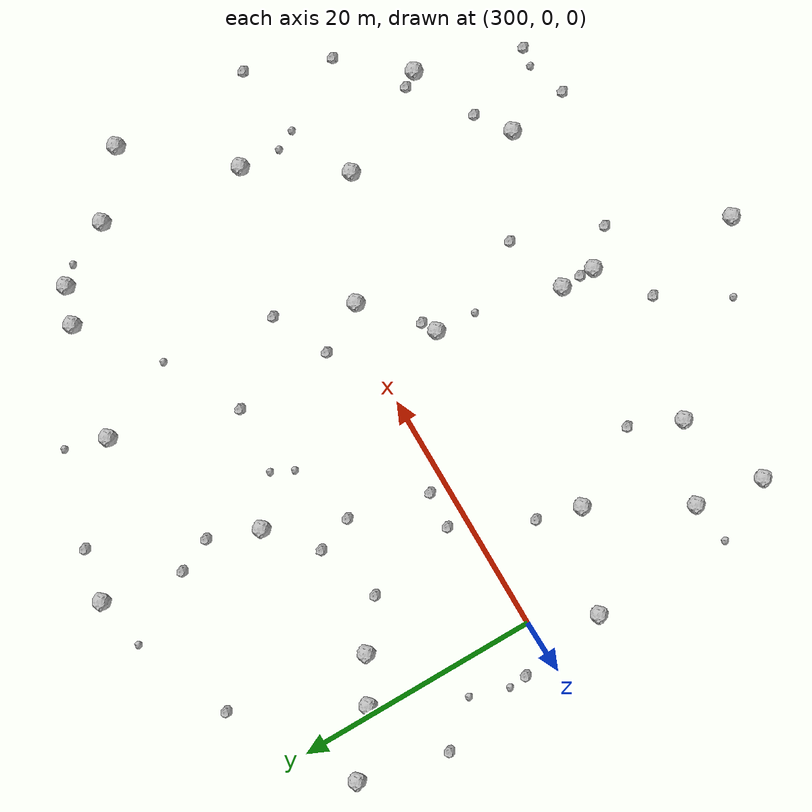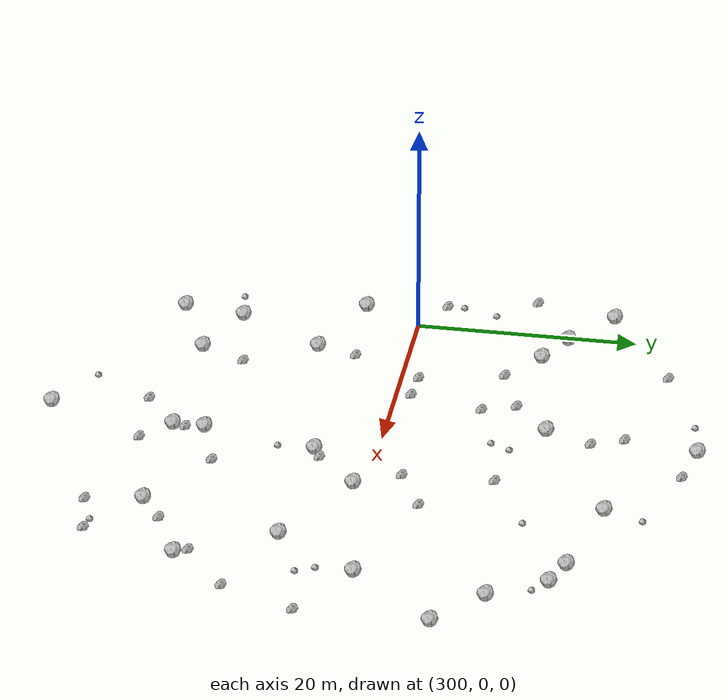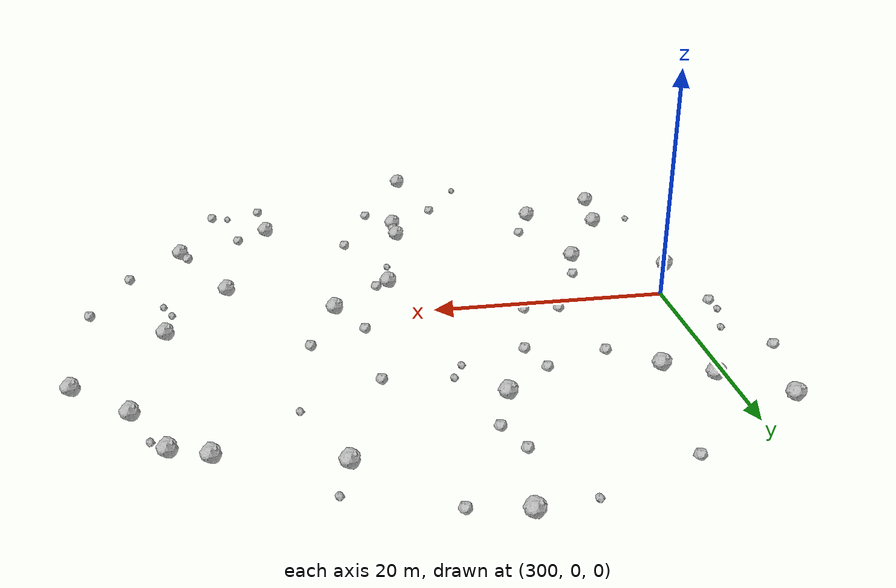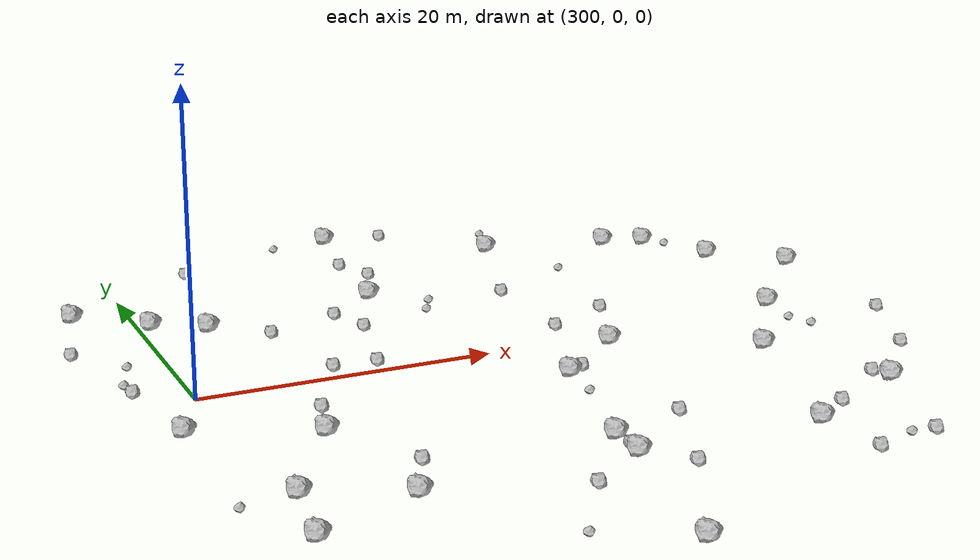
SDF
<sdf version="1.6">
 <world name="default">
  <include><uri>model://sun</uri></include>
  <model name="rock1_8_3">
   <include><uri>model://rock1</uri><pose>342.12879104975656 1.2146791135954977 0.5 0 0 0</pose></include>
  </model>
  <model name="rock1_8_4">
   <include><uri>model://rock1</uri><pose>316.9058359327163 14.085287060229646 0.5 0 0 0</pose></include>
  </model>
  <model name="rock1_8_5">
   <include><uri>model://rock1</uri><pose>328.32705155299175 -1.1720687497899398 0.5 0 0 0</pose></include>
  </model>
  <model name="rock1_8_6">
   <include><uri>model://rock1</uri><pose>329.09293566215234 20.792597177297644 0.5 0 0 0</pose></include>
  </model>
  <model name="rock1_8_7">
   <include><uri>model://rock1</uri><pose>348.4844571446397 8.746178127800782 0.5 0 0 0</pose></include>
  </model>
  <model name="rock1_8_8">
   <include><uri>model://rock1</uri><pose>300.90547672363977 13.9049670082792 0.5 0 0 0</pose></include>
  </model>
  <model name="rock1_8_9">
   <include><uri>model://rock1</uri><pose>307.469735448918 -18.52959388300348 0.5 0 0 0</pose></include>
  </model>
  <model name="rock1_8_10">
   <include><uri>model://rock1</uri><pose>338.11589566069904 18.749242108384358 0.5 0 0 0</pose></include>
  </model>
  <model name="rock1_8_11">
   <include><uri>model://rock1</uri><pose>337.34088477556367 -6.056217490737307 0.5 0 0 0</pose></include>
  </model>
  <model name="rock1_8_12">
   <include><uri>model://rock1</uri><pose>319.19846282001856 -29.865960599034484 0.5 0 0 0</pose></include>
  </model>
  <model name="rock1_8_13">
   <include><uri>model://rock1</uri><pose>323.25261956064315 -5.476495001993889 0.5 0 0 0</pose></include>
  </model>
  <model name="rock1_8_14">
   <include><uri>model://rock1</uri><pose>341.6866886390558 -14.312701438853537 0.5 0 0 0</pose></include>
  </model>
  <model name="rock1_8_15">
   <include><uri>model://rock1</uri><pose>297.85407049073683 -5.114401847932193 0.5 0 0 0</pose></include>
  </model>
  <model name="rock1_8_16">
   <include><uri>model://rock1</uri><pose>301.30121729932 -15.960122247273738 0.5 0 0 0</pose></include>
  </model>
  <model name="rock1_8_17">
   <include><uri>model://rock1</uri><pose>321.2060606936451 -18.496490987839103 0.5 0 0 0</pose></include>
  </model>
  <model name="rock1_8_18">
   <include><uri>model://rock1</uri><pose>333.70621892265416 -18.566478745027567 0.5 0 0 0</pose></include>
  </model>
  <model name="rock1_8_19">
   <include><uri>model://rock1</uri><pose>305.7107488608375 -8.267039520738379 0.5 0 0 0</pose></include>
  </model>
  <model name="rock1_8_20">
   <include><uri>model://rock1</uri><pose>321.19675009884645 -15.671245790555101 0.5 0 0 0</pose></include>
  </model>
  <model name="rock1_8_21">
   <include><uri>model://rock1</uri><pose>296.33168247924885 17.574823715235866 0.5 0 0 0</pose></include>
  </model>
  <model name="rock1_8_22">
   <include><uri>model://rock1</uri><pose>304.4391170176366 11.986950364130479 0.5 0 0 0</pose></include>
  </model>
  <model name="rock1_8_23">
   <include><uri>model://rock1</uri><pose>341.00678894895805 17.65380844398286 0.5 0 0 0</pose></include>
  </model>
  <model name="rock1_8_24">
   <include><uri>model://rock1</uri><pose>318.36463709438976 27.622573673595817 0.5 0 0 0</pose></include>
  </model>
  <model name="rock1_8_25">
   <include><uri>model://rock1</uri><pose>343.8883190625539 12.728200803956405 0.5 0 0 0</pose></include>
  </model>
  <model name="rock1_8_26">
   <include><uri>model://rock1</uri><pose>300.43571088343185 -21.496771721069333 0.5 0 0 0</pose></include>
  </model>
  <model name="rock2_8_0">
   <include><uri>model://rock2</uri><pose>325.76030377202636 10.830968065224994 0.3 0 0 0</pose></include>
  </model>
  <model name="rock2_8_1">
   <include><uri>model://rock2</uri><pose>338.9455296764448 -22.66817195156902 0.3 0 0 0</pose></include>
  </model>
  <model name="rock2_8_2">
   <include><uri>model://rock2</uri><pose>312.5963456980134 1.381879613868712 0.3 0 0 0</pose></include>
  </model>
  <model name="rock2_8_3">
   <include><uri>model://rock2</uri><pose>324.35745566597507 -4.8076340807443465 0.3 0 0 0</pose></include>
  </model>
  <model name="rock2_8_4">
   <include><uri>model://rock2</uri><pose>348.5002102620173 -2.7816499173661633 0.3 0 0 0</pose></include>
  </model>
  <model name="rock2_8_5">
   <include><uri>model://rock2</uri><pose>326.1438702816921 2.7662118387839882 0.3 0 0 0</pose></include>
  </model>
  <model name="rock2_8_6">
   <include><uri>model://rock2</uri><pose>306.038298433507 23.641861390873437 0.3 0 0 0</pose></include>
  </model>
  <model name="rock2_8_7">
   <include><uri>model://rock2</uri><pose>336.3427031803991 -16.638967317884777 0.3 0 0 0</pose></include>
  </model>
  <model name="rock2_8_8">
   <include><uri>model://rock2</uri><pose>313.07854213295184 10.936380222568083 0.3 0 0 0</pose></include>
  </model>
  <model name="rock2_8_9">
   <include><uri>model://rock2</uri><pose>309.21275278177563 -14.476822886381067 0.3 0 0 0</pose></include>
  </model>
  <model name="rock2_8_10">
   <include><uri>model://rock2</uri><pose>294.5681909719668 10.293146192050628 0.3 0 0 0</pose></include>
  </model>
  <model name="rock2_8_11">
   <include><uri>model://rock2</uri><pose>309.62298542586643 1.5841845663127465 0.3 0 0 0</pose></include>
  </model>
  <model name="rock2_8_12">
   <include><uri>model://rock2</uri><pose>321.237656487093 -17.35776721785646 0.3 0 0 0</pose></include>
  </model>
  <model name="rock2_8_13">
   <include><uri>model://rock2</uri><pose>330.6846224136783 4.957885978943793 0.3 0 0 0</pose></include>
  </model>
  <model name="rock2_8_14">
   <include><uri>model://rock2</uri><pose>316.99073942802016 -21.457167426804084 0.3 0 0 0</pose></include>
  </model>
  <model name="rock2_8_15">
   <include><uri>model://rock2</uri><pose>322.5097210158613 26.746157298199954 0.3 0 0 0</pose></include>
  </model>
  <model name="rock2_8_16">
   <include><uri>model://rock2</uri><pose>296.594508636653 2.2179737587907695 0.3 0 0 0</pose></include>
  </model>
  <model name="rock2_8_17">
   <include><uri>model://rock2</uri><pose>307.9220851267079 9.125140641596246 0.3 0 0 0</pose></include>
  </model>
  <model name="rock2_8_18">
   <include><uri>model://rock2</uri><pose>323.62145539178454 -21.00702523487646 0.3 0 0 0</pose></include>
  </model>
  <model name="rock2_8_19">
   <include><uri>model://rock2</uri><pose>317.16731039418556 21.08872030321465 0.3 0 0 0</pose></include>
  </model>
  <model name="rock2_8_20">
   <include><uri>model://rock2</uri><pose>326.3504315311335 -13.984939676235427 0.3 0 0 0</pose></include>
  </model>
  <model name="rock2_8_21">
   <include><uri>model://rock2</uri><pose>314.1455090407757 7.945412859559781 0.3 0 0 0</pose></include>
  </model>
  <model name="rock2_8_22">
   <include><uri>model://rock2</uri><pose>318.3781831283633 18.23915960629069 0.3 0 0 0</pose></include>
  </model>
  <model name="rock2_8_23">
   <include><uri>model://rock2</uri><pose>345.8523436317038 -9.36093734081508 0.3 0 0 0</pose></include>
  </model>
  <model name="rock2_8_24">
   <include><uri>model://rock2</uri><pose>306.6089916401141 -4.654428922669876 0.3 0 0 0</pose></include>
  </model>
  <model name="rock2_8_25">
   <include><uri>model://rock2</uri><pose>340.9503910866781 -13.151067841550034 0.3 0 0 0</pose></include>
  </model>
  <model name="rock2_8_26">
   <include><uri>model://rock2</uri><pose>334.3875647240934 -23.54226668327301 0.3 0 0 0</pose></include>
  </model>
  <model name="rock3_8_0">
   <include><uri>model://rock3</uri><pose>320.32841252282776 11.300466714707873 0.2 0 0 0</pose></include>
  </model>
  <model name="rock3_8_1">
   <include><uri>model://rock3</uri><pose>297.66601494653554 -16.53023508615444 0.2 0 0 0</pose></include>
  </model>
  <model name="rock3_8_2">
   <include><uri>model://rock3</uri><pose>322.8935236562825 -8.810206813279397 0.2 0 0 0</pose></include>
  </model>
  <model name="rock3_8_3">
   <include><uri>model://rock3</uri><pose>330.01505794184277 24.221401535393397 0.2 0 0 0</pose></include>
  </model>
  <model name="rock3_8_4">
   <include><uri>model://rock3</uri><pose>297.41368193883426 6.824813343274748 0.2 0 0 0</pose></include>
  </model>
  <model name="rock3_8_5">
   <include><uri>model://rock3</uri><pose>341.74486595059443 -2.101292788036538 0.2 0 0 0</pose></include>
  </model>
  <model name="rock3_8_6">
   <include><uri>model://rock3</uri><pose>296.40368635956617 3.7088125299384416 0.2 0 0 0</pose></include>
  </model>
  <model name="rock3_8_7">
   <include><uri>model://rock3</uri><pose>337.3979682305179 -22.448213458574802 0.2 0 0 0</pose></include>
  </model>
  <model name="rock3_8_8">
   <include><uri>model://rock3</uri><pose>319.4496765930442 9.559090060266094 0.2 0 0 0</pose></include>
  </model>
  <model name="rock3_8_9">
   <include><uri>model://rock3</uri><pose>342.5234413214581 -3.722463706057461 0.2 0 0 0</pose></include>
  </model>
  <model name="rock3_8_10">
   <include><uri>model://rock3</uri><pose>313.65658712355844 -26.845865450465993 0.2 0 0 0</pose></include>
  </model>
  <model name="rock3_8_11">
   <include><uri>model://rock3</uri><pose>313.9528576597375 26.91990034085402 0.2 0 0 0</pose></include>
  </model>
  <model name="rock3_8_12">
   <include><uri>model://rock3</uri><pose>331.9703066627151 14.130052046696115 0.2 0 0 0</pose></include>
  </model>
  <model name="rock3_8_13">
   <include><uri>model://rock3</uri><pose>342.17408793155914 16.362985279066734 0.2 0 0 0</pose></include>
  </model>
 </world>
</sdf>
